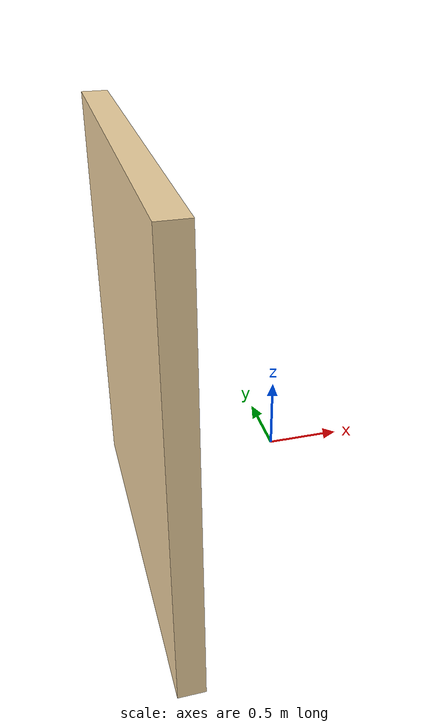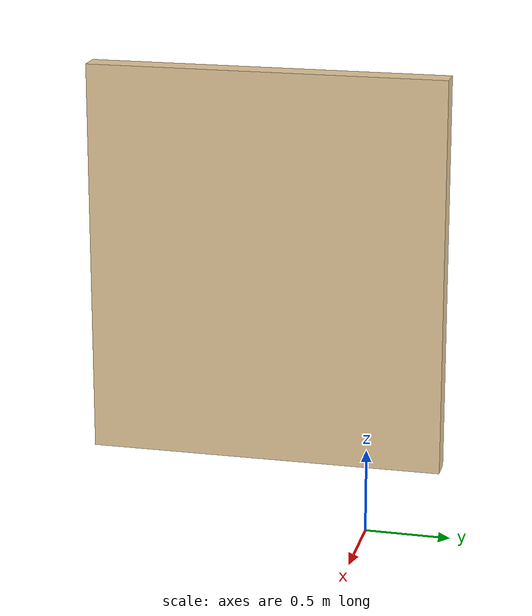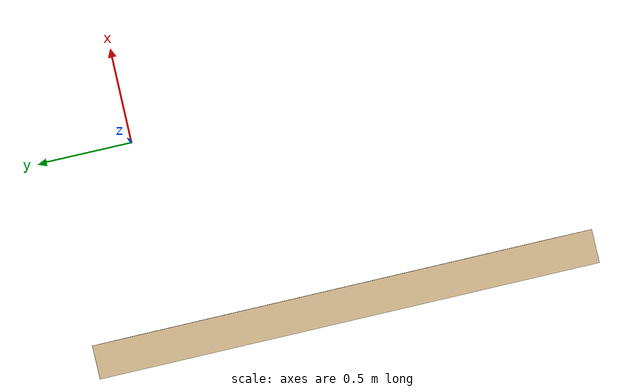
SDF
<?xml version='1.0'?>
<sdf version='1.7'>
  <model name='colored_wall'>
    <pose>-0.562513 -0.8419 0 0 -0 0</pose>
    <link name='Wall_0'>
      <collision name='Wall_0_Collision'>
        <geometry>
          <box>
            <size>2.25 0.15 2.5</size>
          </box>
        </geometry>
        <pose>0 0 1.25 0 -0 0</pose>
      </collision>
      <visual name='Wall_0_Visual'>
        <pose>0 0 1.25 0 -0 0</pose>
        <geometry>
          <box>
            <size>2.25 0.15 2.5</size>
          </box>
        </geometry>
        <material>
          <script>
            <uri>file://media/materials/scripts/gazebo.material</uri>
            <name>Gazebo/Grey</name>
          </script>
          <ambient>0.921569 0.807843 0.615686 1</ambient>
        </material>
        <meta>
          <layer>0</layer>
        </meta>
      </visual>
      <pose>-0.487512 0 0 0 -0 1.5708</pose>
    </link>
    <static>1</static>
  </model>
</sdf>
